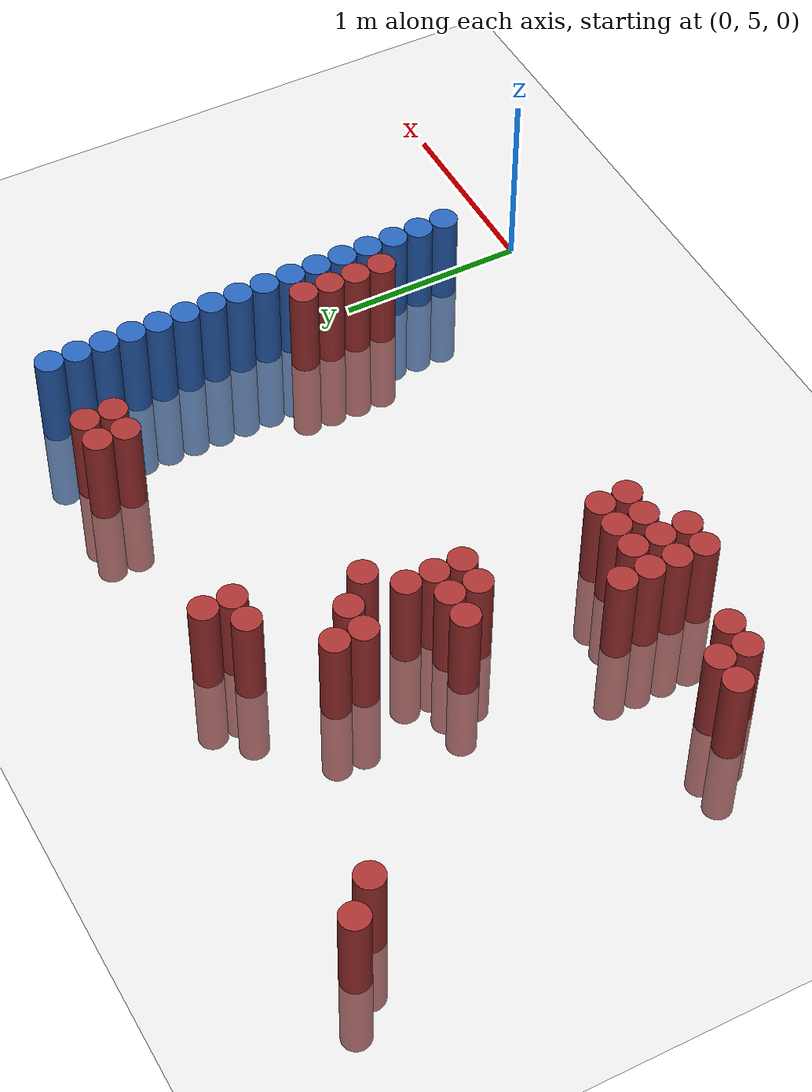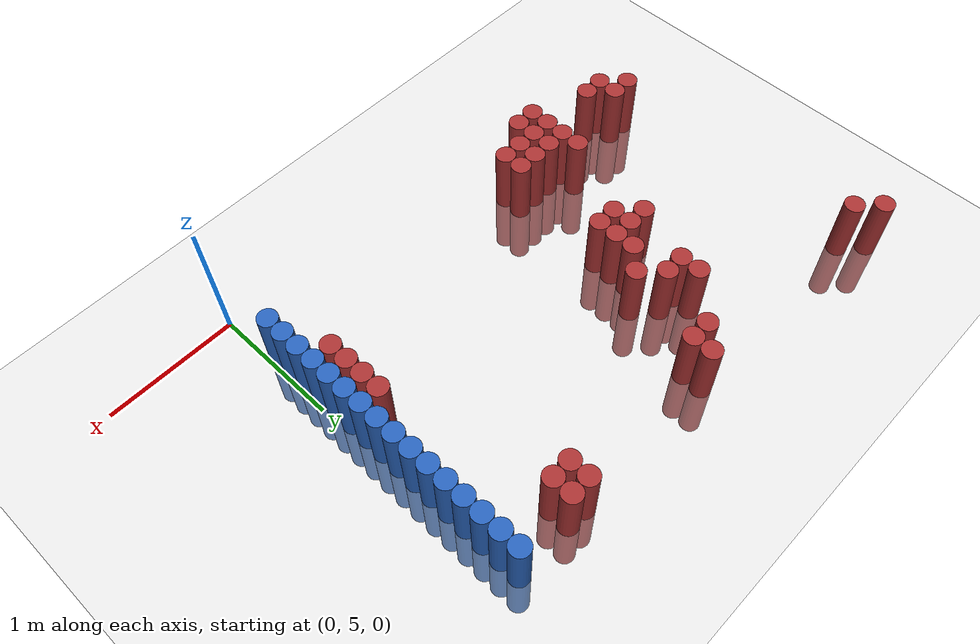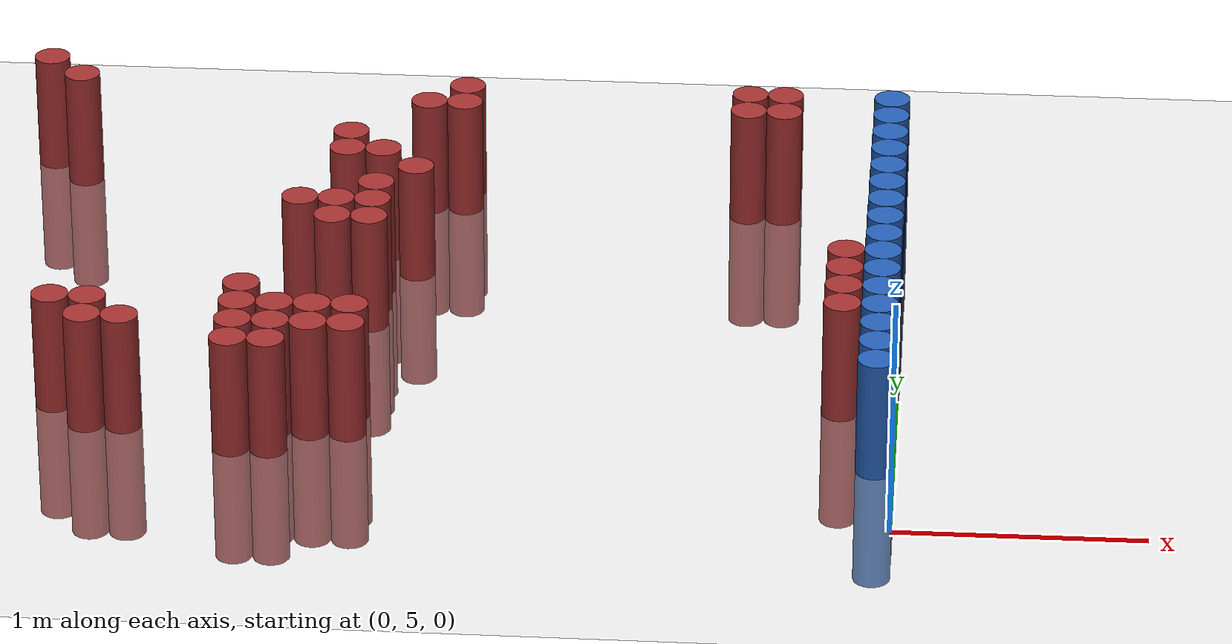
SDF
<sdf version="1.6">
 <world name="default">
  <model name="ground_plane">
   <static>1</static>
   <link name="link">
    <collision name="collision">
     <geometry><plane><normal>0 0 1</normal><size>100 100</size></plane></geometry>
     <surface><friction><ode><mu>100</mu><mu2>50</mu2></ode></friction></surface>
    </collision>
    <visual name="visual">
     <cast_shadows>0</cast_shadows>
     <geometry><plane><normal>0 0 1</normal><size>100 100</size></plane></geometry>
     <material>
      <script><uri>file://media/materials/scripts/gazebo.material</uri><name>Gazebo/Grey</name></script>
     </material>
    </visual>
   </link>
  </model>
  <model name="unit_cylinder_155">
   <static>1</static>
   <pose>-3.675000 7.875000 0.000000 0.000000 0.000000 0.000000</pose>
   <link name="link">
    <inertial>
     <mass>1</mass>
     <inertia><ixx>0.145833</ixx><ixy>0</ixy><ixz>0</ixz><iyy>0.145833</iyy><iyz>0</iyz><izz>0.125</izz></inertia>
    </inertial>
    <collision name="collision">
     <geometry><cylinder><radius>0.075000</radius><length>1</length></cylinder></geometry>
    </collision>
    <visual name="visual">
     <geometry><cylinder><radius>0.075000</radius><length>1</length></cylinder></geometry>
     <material>
      <ambient>0.648000 0.192000 0.192000 1</ambient>
      <diffuse>0.648000 0.192000 0.192000 1</diffuse>
     </material>
     <material>
      <script><name>Gazebo/Grey</name><uri>file://media/materials/scripts/gazebo.material</uri></script>
     </material>
    </visual>
   </link>
  </model>
  <model name="unit_cylinder_160">
   <static>1</static>
   <pose>-3.525000 7.725000 0.000000 0.000000 0.000000 0.000000</pose>
   <link name="link">
    <inertial>
     <mass>1</mass>
     <inertia><ixx>0.145833</ixx><ixy>0</ixy><ixz>0</ixz><iyy>0.145833</iyy><iyz>0</iyz><izz>0.125</izz></inertia>
    </inertial>
    <collision name="collision">
     <geometry><cylinder><radius>0.075000</radius><length>1</length></cylinder></geometry>
    </collision>
    <visual name="visual">
     <geometry><cylinder><radius>0.075000</radius><length>1</length></cylinder></geometry>
     <material>
      <ambient>0.648000 0.192000 0.192000 1</ambient>
      <diffuse>0.648000 0.192000 0.192000 1</diffuse>
     </material>
     <material>
      <script><name>Gazebo/Grey</name><uri>file://media/materials/scripts/gazebo.material</uri></script>
     </material>
    </visual>
   </link>
  </model>
  <model name="unit_cylinder_165">
   <static>1</static>
   <pose>-3.375000 5.775000 0.000000 0.000000 0.000000 0.000000</pose>
   <link name="link">
    <inertial>
     <mass>1</mass>
     <inertia><ixx>0.145833</ixx><ixy>0</ixy><ixz>0</ixz><iyy>0.145833</iyy><iyz>0</iyz><izz>0.125</izz></inertia>
    </inertial>
    <collision name="collision">
     <geometry><cylinder><radius>0.075000</radius><length>1</length></cylinder></geometry>
    </collision>
    <visual name="visual">
     <geometry><cylinder><radius>0.075000</radius><length>1</length></cylinder></geometry>
     <material>
      <ambient>0.648000 0.192000 0.192000 1</ambient>
      <diffuse>0.648000 0.192000 0.192000 1</diffuse>
     </material>
     <material>
      <script><name>Gazebo/Grey</name><uri>file://media/materials/scripts/gazebo.material</uri></script>
     </material>
    </visual>
   </link>
  </model>
  <model name="unit_cylinder_169">
   <static>1</static>
   <pose>-3.225000 5.625000 0.000000 0.000000 0.000000 0.000000</pose>
   <link name="link">
    <inertial>
     <mass>1</mass>
     <inertia><ixx>0.145833</ixx><ixy>0</ixy><ixz>0</ixz><iyy>0.145833</iyy><iyz>0</iyz><izz>0.125</izz></inertia>
    </inertial>
    <collision name="collision">
     <geometry><cylinder><radius>0.075000</radius><length>1</length></cylinder></geometry>
    </collision>
    <visual name="visual">
     <geometry><cylinder><radius>0.075000</radius><length>1</length></cylinder></geometry>
     <material>
      <ambient>0.648000 0.192000 0.192000 1</ambient>
      <diffuse>0.648000 0.192000 0.192000 1</diffuse>
     </material>
     <material>
      <script><name>Gazebo/Grey</name><uri>file://media/materials/scripts/gazebo.material</uri></script>
     </material>
    </visual>
   </link>
  </model>
  <model name="unit_cylinder_170">
   <static>1</static>
   <pose>-3.225000 5.775000 0.000000 0.000000 0.000000 0.000000</pose>
   <link name="link">
    <inertial>
     <mass>1</mass>
     <inertia><ixx>0.145833</ixx><ixy>0</ixy><ixz>0</ixz><iyy>0.145833</iyy><iyz>0</iyz><izz>0.125</izz></inertia>
    </inertial>
    <collision name="collision">
     <geometry><cylinder><radius>0.075000</radius><length>1</length></cylinder></geometry>
    </collision>
    <visual name="visual">
     <geometry><cylinder><radius>0.075000</radius><length>1</length></cylinder></geometry>
     <material>
      <ambient>0.648000 0.192000 0.192000 1</ambient>
      <diffuse>0.648000 0.192000 0.192000 1</diffuse>
     </material>
     <material>
      <script><name>Gazebo/Grey</name><uri>file://media/materials/scripts/gazebo.material</uri></script>
     </material>
    </visual>
   </link>
  </model>
  <model name="unit_cylinder_172">
   <static>1</static>
   <pose>-3.075000 5.625000 0.000000 0.000000 0.000000 0.000000</pose>
   <link name="link">
    <inertial>
     <mass>1</mass>
     <inertia><ixx>0.145833</ixx><ixy>0</ixy><ixz>0</ixz><iyy>0.145833</iyy><iyz>0</iyz><izz>0.125</izz></inertia>
    </inertial>
    <collision name="collision">
     <geometry><cylinder><radius>0.075000</radius><length>1</length></cylinder></geometry>
    </collision>
    <visual name="visual">
     <geometry><cylinder><radius>0.075000</radius><length>1</length></cylinder></geometry>
     <material>
      <ambient>0.648000 0.192000 0.192000 1</ambient>
      <diffuse>0.648000 0.192000 0.192000 1</diffuse>
     </material>
     <material>
      <script><name>Gazebo/Grey</name><uri>file://media/materials/scripts/gazebo.material</uri></script>
     </material>
    </visual>
   </link>
  </model>
  <model name="unit_cylinder_177">
   <static>1</static>
   <pose>-2.625000 5.475000 0.000000 0.000000 0.000000 0.000000</pose>
   <link name="link">
    <inertial>
     <mass>1</mass>
     <inertia><ixx>0.145833</ixx><ixy>0</ixy><ixz>0</ixz><iyy>0.145833</iyy><iyz>0</iyz><izz>0.125</izz></inertia>
    </inertial>
    <collision name="collision">
     <geometry><cylinder><radius>0.075000</radius><length>1</length></cylinder></geometry>
    </collision>
    <visual name="visual">
     <geometry><cylinder><radius>0.075000</radius><length>1</length></cylinder></geometry>
     <material>
      <ambient>0.648000 0.192000 0.192000 1</ambient>
      <diffuse>0.648000 0.192000 0.192000 1</diffuse>
     </material>
     <material>
      <script><name>Gazebo/Grey</name><uri>file://media/materials/scripts/gazebo.material</uri></script>
     </material>
    </visual>
   </link>
  </model>
  <model name="unit_cylinder_178">
   <static>1</static>
   <pose>-2.625000 5.625000 0.000000 0.000000 0.000000 0.000000</pose>
   <link name="link">
    <inertial>
     <mass>1</mass>
     <inertia><ixx>0.145833</ixx><ixy>0</ixy><ixz>0</ixz><iyy>0.145833</iyy><iyz>0</iyz><izz>0.125</izz></inertia>
    </inertial>
    <collision name="collision">
     <geometry><cylinder><radius>0.075000</radius><length>1</length></cylinder></geometry>
    </collision>
    <visual name="visual">
     <geometry><cylinder><radius>0.075000</radius><length>1</length></cylinder></geometry>
     <material>
      <ambient>0.648000 0.192000 0.192000 1</ambient>
      <diffuse>0.648000 0.192000 0.192000 1</diffuse>
     </material>
     <material>
      <script><name>Gazebo/Grey</name><uri>file://media/materials/scripts/gazebo.material</uri></script>
     </material>
    </visual>
   </link>
  </model>
  <model name="unit_cylinder_179">
   <static>1</static>
   <pose>-2.625000 5.775000 0.000000 0.000000 0.000000 0.000000</pose>
   <link name="link">
    <inertial>
     <mass>1</mass>
     <inertia><ixx>0.145833</ixx><ixy>0</ixy><ixz>0</ixz><iyy>0.145833</iyy><iyz>0</iyz><izz>0.125</izz></inertia>
    </inertial>
    <collision name="collision">
     <geometry><cylinder><radius>0.075000</radius><length>1</length></cylinder></geometry>
    </collision>
    <visual name="visual">
     <geometry><cylinder><radius>0.075000</radius><length>1</length></cylinder></geometry>
     <material>
      <ambient>0.648000 0.192000 0.192000 1</ambient>
      <diffuse>0.648000 0.192000 0.192000 1</diffuse>
     </material>
     <material>
      <script><name>Gazebo/Grey</name><uri>file://media/materials/scripts/gazebo.material</uri></script>
     </material>
    </visual>
   </link>
  </model>
  <model name="unit_cylinder_180">
   <static>1</static>
   <pose>-2.625000 5.925000 0.000000 0.000000 0.000000 0.000000</pose>
   <link name="link">
    <inertial>
     <mass>1</mass>
     <inertia><ixx>0.145833</ixx><ixy>0</ixy><ixz>0</ixz><iyy>0.145833</iyy><iyz>0</iyz><izz>0.125</izz></inertia>
    </inertial>
    <collision name="collision">
     <geometry><cylinder><radius>0.075000</radius><length>1</length></cylinder></geometry>
    </collision>
    <visual name="visual">
     <geometry><cylinder><radius>0.075000</radius><length>1</length></cylinder></geometry>
     <material>
      <ambient>0.648000 0.192000 0.192000 1</ambient>
      <diffuse>0.648000 0.192000 0.192000 1</diffuse>
     </material>
     <material>
      <script><name>Gazebo/Grey</name><uri>file://media/materials/scripts/gazebo.material</uri></script>
     </material>
    </visual>
   </link>
  </model>
  <model name="unit_cylinder_184">
   <static>1</static>
   <pose>-2.475000 5.475000 0.000000 0.000000 0.000000 0.000000</pose>
   <link name="link">
    <inertial>
     <mass>1</mass>
     <inertia><ixx>0.145833</ixx><ixy>0</ixy><ixz>0</ixz><iyy>0.145833</iyy><iyz>0</iyz><izz>0.125</izz></inertia>
    </inertial>
    <collision name="collision">
     <geometry><cylinder><radius>0.075000</radius><length>1</length></cylinder></geometry>
    </collision>
    <visual name="visual">
     <geometry><cylinder><radius>0.075000</radius><length>1</length></cylinder></geometry>
     <material>
      <ambient>0.648000 0.192000 0.192000 1</ambient>
      <diffuse>0.648000 0.192000 0.192000 1</diffuse>
     </material>
     <material>
      <script><name>Gazebo/Grey</name><uri>file://media/materials/scripts/gazebo.material</uri></script>
     </material>
    </visual>
   </link>
  </model>
  <model name="unit_cylinder_185">
   <static>1</static>
   <pose>-2.475000 5.625000 0.000000 0.000000 0.000000 0.000000</pose>
   <link name="link">
    <inertial>
     <mass>1</mass>
     <inertia><ixx>0.145833</ixx><ixy>0</ixy><ixz>0</ixz><iyy>0.145833</iyy><iyz>0</iyz><izz>0.125</izz></inertia>
    </inertial>
    <collision name="collision">
     <geometry><cylinder><radius>0.075000</radius><length>1</length></cylinder></geometry>
    </collision>
    <visual name="visual">
     <geometry><cylinder><radius>0.075000</radius><length>1</length></cylinder></geometry>
     <material>
      <ambient>0.648000 0.192000 0.192000 1</ambient>
      <diffuse>0.648000 0.192000 0.192000 1</diffuse>
     </material>
     <material>
      <script><name>Gazebo/Grey</name><uri>file://media/materials/scripts/gazebo.material</uri></script>
     </material>
    </visual>
   </link>
  </model>
  <model name="unit_cylinder_186">
   <static>1</static>
   <pose>-2.475000 5.775000 0.000000 0.000000 0.000000 0.000000</pose>
   <link name="link">
    <inertial>
     <mass>1</mass>
     <inertia><ixx>0.145833</ixx><ixy>0</ixy><ixz>0</ixz><iyy>0.145833</iyy><iyz>0</iyz><izz>0.125</izz></inertia>
    </inertial>
    <collision name="collision">
     <geometry><cylinder><radius>0.075000</radius><length>1</length></cylinder></geometry>
    </collision>
    <visual name="visual">
     <geometry><cylinder><radius>0.075000</radius><length>1</length></cylinder></geometry>
     <material>
      <ambient>0.648000 0.192000 0.192000 1</ambient>
      <diffuse>0.648000 0.192000 0.192000 1</diffuse>
     </material>
     <material>
      <script><name>Gazebo/Grey</name><uri>file://media/materials/scripts/gazebo.material</uri></script>
     </material>
    </visual>
   </link>
  </model>
  <model name="unit_cylinder_187">
   <static>1</static>
   <pose>-2.475000 6.675000 0.000000 0.000000 0.000000 0.000000</pose>
   <link name="link">
    <inertial>
     <mass>1</mass>
     <inertia><ixx>0.145833</ixx><ixy>0</ixy><ixz>0</ixz><iyy>0.145833</iyy><iyz>0</iyz><izz>0.125</izz></inertia>
    </inertial>
    <collision name="collision">
     <geometry><cylinder><radius>0.075000</radius><length>1</length></cylinder></geometry>
    </collision>
    <visual name="visual">
     <geometry><cylinder><radius>0.075000</radius><length>1</length></cylinder></geometry>
     <material>
      <ambient>0.648000 0.192000 0.192000 1</ambient>
      <diffuse>0.648000 0.192000 0.192000 1</diffuse>
     </material>
     <material>
      <script><name>Gazebo/Grey</name><uri>file://media/materials/scripts/gazebo.material</uri></script>
     </material>
    </visual>
   </link>
  </model>
  <model name="unit_cylinder_191">
   <static>1</static>
   <pose>-2.325000 5.625000 0.000000 0.000000 0.000000 0.000000</pose>
   <link name="link">
    <inertial>
     <mass>1</mass>
     <inertia><ixx>0.145833</ixx><ixy>0</ixy><ixz>0</ixz><iyy>0.145833</iyy><iyz>0</iyz><izz>0.125</izz></inertia>
    </inertial>
    <collision name="collision">
     <geometry><cylinder><radius>0.075000</radius><length>1</length></cylinder></geometry>
    </collision>
    <visual name="visual">
     <geometry><cylinder><radius>0.075000</radius><length>1</length></cylinder></geometry>
     <material>
      <ambient>0.648000 0.192000 0.192000 1</ambient>
      <diffuse>0.648000 0.192000 0.192000 1</diffuse>
     </material>
     <material>
      <script><name>Gazebo/Grey</name><uri>file://media/materials/scripts/gazebo.material</uri></script>
     </material>
    </visual>
   </link>
  </model>
  <model name="unit_cylinder_192">
   <static>1</static>
   <pose>-2.325000 5.775000 0.000000 0.000000 0.000000 0.000000</pose>
   <link name="link">
    <inertial>
     <mass>1</mass>
     <inertia><ixx>0.145833</ixx><ixy>0</ixy><ixz>0</ixz><iyy>0.145833</iyy><iyz>0</iyz><izz>0.125</izz></inertia>
    </inertial>
    <collision name="collision">
     <geometry><cylinder><radius>0.075000</radius><length>1</length></cylinder></geometry>
    </collision>
    <visual name="visual">
     <geometry><cylinder><radius>0.075000</radius><length>1</length></cylinder></geometry>
     <material>
      <ambient>0.648000 0.192000 0.192000 1</ambient>
      <diffuse>0.648000 0.192000 0.192000 1</diffuse>
     </material>
     <material>
      <script><name>Gazebo/Grey</name><uri>file://media/materials/scripts/gazebo.material</uri></script>
     </material>
    </visual>
   </link>
  </model>
  <model name="unit_cylinder_193">
   <static>1</static>
   <pose>-2.325000 6.525000 0.000000 0.000000 0.000000 0.000000</pose>
   <link name="link">
    <inertial>
     <mass>1</mass>
     <inertia><ixx>0.145833</ixx><ixy>0</ixy><ixz>0</ixz><iyy>0.145833</iyy><iyz>0</iyz><izz>0.125</izz></inertia>
    </inertial>
    <collision name="collision">
     <geometry><cylinder><radius>0.075000</radius><length>1</length></cylinder></geometry>
    </collision>
    <visual name="visual">
     <geometry><cylinder><radius>0.075000</radius><length>1</length></cylinder></geometry>
     <material>
      <ambient>0.648000 0.192000 0.192000 1</ambient>
      <diffuse>0.648000 0.192000 0.192000 1</diffuse>
     </material>
     <material>
      <script><name>Gazebo/Grey</name><uri>file://media/materials/scripts/gazebo.material</uri></script>
     </material>
    </visual>
   </link>
  </model>
  <model name="unit_cylinder_194">
   <static>1</static>
   <pose>-2.325000 6.675000 0.000000 0.000000 0.000000 0.000000</pose>
   <link name="link">
    <inertial>
     <mass>1</mass>
     <inertia><ixx>0.145833</ixx><ixy>0</ixy><ixz>0</ixz><iyy>0.145833</iyy><iyz>0</iyz><izz>0.125</izz></inertia>
    </inertial>
    <collision name="collision">
     <geometry><cylinder><radius>0.075000</radius><length>1</length></cylinder></geometry>
    </collision>
    <visual name="visual">
     <geometry><cylinder><radius>0.075000</radius><length>1</length></cylinder></geometry>
     <material>
      <ambient>0.648000 0.192000 0.192000 1</ambient>
      <diffuse>0.648000 0.192000 0.192000 1</diffuse>
     </material>
     <material>
      <script><name>Gazebo/Grey</name><uri>file://media/materials/scripts/gazebo.material</uri></script>
     </material>
    </visual>
   </link>
  </model>
  <model name="unit_cylinder_195">
   <static>1</static>
   <pose>-2.325000 7.125000 0.000000 0.000000 0.000000 0.000000</pose>
   <link name="link">
    <inertial>
     <mass>1</mass>
     <inertia><ixx>0.145833</ixx><ixy>0</ixy><ixz>0</ixz><iyy>0.145833</iyy><iyz>0</iyz><izz>0.125</izz></inertia>
    </inertial>
    <collision name="collision">
     <geometry><cylinder><radius>0.075000</radius><length>1</length></cylinder></geometry>
    </collision>
    <visual name="visual">
     <geometry><cylinder><radius>0.075000</radius><length>1</length></cylinder></geometry>
     <material>
      <ambient>0.648000 0.192000 0.192000 1</ambient>
      <diffuse>0.648000 0.192000 0.192000 1</diffuse>
     </material>
     <material>
      <script><name>Gazebo/Grey</name><uri>file://media/materials/scripts/gazebo.material</uri></script>
     </material>
    </visual>
   </link>
  </model>
  <model name="unit_cylinder_196">
   <static>1</static>
   <pose>-2.325000 7.275000 0.000000 0.000000 0.000000 0.000000</pose>
   <link name="link">
    <inertial>
     <mass>1</mass>
     <inertia><ixx>0.145833</ixx><ixy>0</ixy><ixz>0</ixz><iyy>0.145833</iyy><iyz>0</iyz><izz>0.125</izz></inertia>
    </inertial>
    <collision name="collision">
     <geometry><cylinder><radius>0.075000</radius><length>1</length></cylinder></geometry>
    </collision>
    <visual name="visual">
     <geometry><cylinder><radius>0.075000</radius><length>1</length></cylinder></geometry>
     <material>
      <ambient>0.648000 0.192000 0.192000 1</ambient>
      <diffuse>0.648000 0.192000 0.192000 1</diffuse>
     </material>
     <material>
      <script><name>Gazebo/Grey</name><uri>file://media/materials/scripts/gazebo.material</uri></script>
     </material>
    </visual>
   </link>
  </model>
  <model name="unit_cylinder_198">
   <static>1</static>
   <pose>-2.175000 5.625000 0.000000 0.000000 0.000000 0.000000</pose>
   <link name="link">
    <inertial>
     <mass>1</mass>
     <inertia><ixx>0.145833</ixx><ixy>0</ixy><ixz>0</ixz><iyy>0.145833</iyy><iyz>0</iyz><izz>0.125</izz></inertia>
    </inertial>
    <collision name="collision">
     <geometry><cylinder><radius>0.075000</radius><length>1</length></cylinder></geometry>
    </collision>
    <visual name="visual">
     <geometry><cylinder><radius>0.075000</radius><length>1</length></cylinder></geometry>
     <material>
      <ambient>0.648000 0.192000 0.192000 1</ambient>
      <diffuse>0.648000 0.192000 0.192000 1</diffuse>
     </material>
     <material>
      <script><name>Gazebo/Grey</name><uri>file://media/materials/scripts/gazebo.material</uri></script>
     </material>
    </visual>
   </link>
  </model>
  <model name="unit_cylinder_199">
   <static>1</static>
   <pose>-2.175000 5.775000 0.000000 0.000000 0.000000 0.000000</pose>
   <link name="link">
    <inertial>
     <mass>1</mass>
     <inertia><ixx>0.145833</ixx><ixy>0</ixy><ixz>0</ixz><iyy>0.145833</iyy><iyz>0</iyz><izz>0.125</izz></inertia>
    </inertial>
    <collision name="collision">
     <geometry><cylinder><radius>0.075000</radius><length>1</length></cylinder></geometry>
    </collision>
    <visual name="visual">
     <geometry><cylinder><radius>0.075000</radius><length>1</length></cylinder></geometry>
     <material>
      <ambient>0.648000 0.192000 0.192000 1</ambient>
      <diffuse>0.648000 0.192000 0.192000 1</diffuse>
     </material>
     <material>
      <script><name>Gazebo/Grey</name><uri>file://media/materials/scripts/gazebo.material</uri></script>
     </material>
    </visual>
   </link>
  </model>
  <model name="unit_cylinder_200">
   <static>1</static>
   <pose>-2.175000 6.525000 0.000000 0.000000 0.000000 0.000000</pose>
   <link name="link">
    <inertial>
     <mass>1</mass>
     <inertia><ixx>0.145833</ixx><ixy>0</ixy><ixz>0</ixz><iyy>0.145833</iyy><iyz>0</iyz><izz>0.125</izz></inertia>
    </inertial>
    <collision name="collision">
     <geometry><cylinder><radius>0.075000</radius><length>1</length></cylinder></geometry>
    </collision>
    <visual name="visual">
     <geometry><cylinder><radius>0.075000</radius><length>1</length></cylinder></geometry>
     <material>
      <ambient>0.648000 0.192000 0.192000 1</ambient>
      <diffuse>0.648000 0.192000 0.192000 1</diffuse>
     </material>
     <material>
      <script><name>Gazebo/Grey</name><uri>file://media/materials/scripts/gazebo.material</uri></script>
     </material>
    </visual>
   </link>
  </model>
  <model name="unit_cylinder_201">
   <static>1</static>
   <pose>-2.175000 6.675000 0.000000 0.000000 0.000000 0.000000</pose>
   <link name="link">
    <inertial>
     <mass>1</mass>
     <inertia><ixx>0.145833</ixx><ixy>0</ixy><ixz>0</ixz><iyy>0.145833</iyy><iyz>0</iyz><izz>0.125</izz></inertia>
    </inertial>
    <collision name="collision">
     <geometry><cylinder><radius>0.075000</radius><length>1</length></cylinder></geometry>
    </collision>
    <visual name="visual">
     <geometry><cylinder><radius>0.075000</radius><length>1</length></cylinder></geometry>
     <material>
      <ambient>0.648000 0.192000 0.192000 1</ambient>
      <diffuse>0.648000 0.192000 0.192000 1</diffuse>
     </material>
     <material>
      <script><name>Gazebo/Grey</name><uri>file://media/materials/scripts/gazebo.material</uri></script>
     </material>
    </visual>
   </link>
  </model>
  <model name="unit_cylinder_202">
   <static>1</static>
   <pose>-2.175000 6.825000 0.000000 0.000000 0.000000 0.000000</pose>
   <link name="link">
    <inertial>
     <mass>1</mass>
     <inertia><ixx>0.145833</ixx><ixy>0</ixy><ixz>0</ixz><iyy>0.145833</iyy><iyz>0</iyz><izz>0.125</izz></inertia>
    </inertial>
    <collision name="collision">
     <geometry><cylinder><radius>0.075000</radius><length>1</length></cylinder></geometry>
    </collision>
    <visual name="visual">
     <geometry><cylinder><radius>0.075000</radius><length>1</length></cylinder></geometry>
     <material>
      <ambient>0.648000 0.192000 0.192000 1</ambient>
      <diffuse>0.648000 0.192000 0.192000 1</diffuse>
     </material>
     <material>
      <script><name>Gazebo/Grey</name><uri>file://media/materials/scripts/gazebo.material</uri></script>
     </material>
    </visual>
   </link>
  </model>
  <model name="unit_cylinder_203">
   <static>1</static>
   <pose>-2.175000 7.125000 0.000000 0.000000 0.000000 0.000000</pose>
   <link name="link">
    <inertial>
     <mass>1</mass>
     <inertia><ixx>0.145833</ixx><ixy>0</ixy><ixz>0</ixz><iyy>0.145833</iyy><iyz>0</iyz><izz>0.125</izz></inertia>
    </inertial>
    <collision name="collision">
     <geometry><cylinder><radius>0.075000</radius><length>1</length></cylinder></geometry>
    </collision>
    <visual name="visual">
     <geometry><cylinder><radius>0.075000</radius><length>1</length></cylinder></geometry>
     <material>
      <ambient>0.648000 0.192000 0.192000 1</ambient>
      <diffuse>0.648000 0.192000 0.192000 1</diffuse>
     </material>
     <material>
      <script><name>Gazebo/Grey</name><uri>file://media/materials/scripts/gazebo.material</uri></script>
     </material>
    </visual>
   </link>
  </model>
  <model name="unit_cylinder_204">
   <static>1</static>
   <pose>-2.025000 6.975000 0.000000 0.000000 0.000000 0.000000</pose>
   <link name="link">
    <inertial>
     <mass>1</mass>
     <inertia><ixx>0.145833</ixx><ixy>0</ixy><ixz>0</ixz><iyy>0.145833</iyy><iyz>0</iyz><izz>0.125</izz></inertia>
    </inertial>
    <collision name="collision">
     <geometry><cylinder><radius>0.075000</radius><length>1</length></cylinder></geometry>
    </collision>
    <visual name="visual">
     <geometry><cylinder><radius>0.075000</radius><length>1</length></cylinder></geometry>
     <material>
      <ambient>0.648000 0.192000 0.192000 1</ambient>
      <diffuse>0.648000 0.192000 0.192000 1</diffuse>
     </material>
     <material>
      <script><name>Gazebo/Grey</name><uri>file://media/materials/scripts/gazebo.material</uri></script>
     </material>
    </visual>
   </link>
  </model>
  <model name="unit_cylinder_205">
   <static>1</static>
   <pose>-2.025000 7.575000 0.000000 0.000000 0.000000 0.000000</pose>
   <link name="link">
    <inertial>
     <mass>1</mass>
     <inertia><ixx>0.145833</ixx><ixy>0</ixy><ixz>0</ixz><iyy>0.145833</iyy><iyz>0</iyz><izz>0.125</izz></inertia>
    </inertial>
    <collision name="collision">
     <geometry><cylinder><radius>0.075000</radius><length>1</length></cylinder></geometry>
    </collision>
    <visual name="visual">
     <geometry><cylinder><radius>0.075000</radius><length>1</length></cylinder></geometry>
     <material>
      <ambient>0.648000 0.192000 0.192000 1</ambient>
      <diffuse>0.648000 0.192000 0.192000 1</diffuse>
     </material>
     <material>
      <script><name>Gazebo/Grey</name><uri>file://media/materials/scripts/gazebo.material</uri></script>
     </material>
    </visual>
   </link>
  </model>
  <model name="unit_cylinder_206">
   <static>1</static>
   <pose>-1.875000 7.575000 0.000000 0.000000 0.000000 0.000000</pose>
   <link name="link">
    <inertial>
     <mass>1</mass>
     <inertia><ixx>0.145833</ixx><ixy>0</ixy><ixz>0</ixz><iyy>0.145833</iyy><iyz>0</iyz><izz>0.125</izz></inertia>
    </inertial>
    <collision name="collision">
     <geometry><cylinder><radius>0.075000</radius><length>1</length></cylinder></geometry>
    </collision>
    <visual name="visual">
     <geometry><cylinder><radius>0.075000</radius><length>1</length></cylinder></geometry>
     <material>
      <ambient>0.648000 0.192000 0.192000 1</ambient>
      <diffuse>0.648000 0.192000 0.192000 1</diffuse>
     </material>
     <material>
      <script><name>Gazebo/Grey</name><uri>file://media/materials/scripts/gazebo.material</uri></script>
     </material>
    </visual>
   </link>
  </model>
  <model name="unit_cylinder_207">
   <static>1</static>
   <pose>-1.875000 7.725000 0.000000 0.000000 0.000000 0.000000</pose>
   <link name="link">
    <inertial>
     <mass>1</mass>
     <inertia><ixx>0.145833</ixx><ixy>0</ixy><ixz>0</ixz><iyy>0.145833</iyy><iyz>0</iyz><izz>0.125</izz></inertia>
    </inertial>
    <collision name="collision">
     <geometry><cylinder><radius>0.075000</radius><length>1</length></cylinder></geometry>
    </collision>
    <visual name="visual">
     <geometry><cylinder><radius>0.075000</radius><length>1</length></cylinder></geometry>
     <material>
      <ambient>0.648000 0.192000 0.192000 1</ambient>
      <diffuse>0.648000 0.192000 0.192000 1</diffuse>
     </material>
     <material>
      <script><name>Gazebo/Grey</name><uri>file://media/materials/scripts/gazebo.material</uri></script>
     </material>
    </visual>
   </link>
  </model>
  <model name="unit_cylinder_211">
   <static>1</static>
   <pose>-0.675000 7.575000 0.000000 0.000000 0.000000 0.000000</pose>
   <link name="link">
    <inertial>
     <mass>1</mass>
     <inertia><ixx>0.145833</ixx><ixy>0</ixy><ixz>0</ixz><iyy>0.145833</iyy><iyz>0</iyz><izz>0.125</izz></inertia>
    </inertial>
    <collision name="collision">
     <geometry><cylinder><radius>0.075000</radius><length>1</length></cylinder></geometry>
    </collision>
    <visual name="visual">
     <geometry><cylinder><radius>0.075000</radius><length>1</length></cylinder></geometry>
     <material>
      <ambient>0.648000 0.192000 0.192000 1</ambient>
      <diffuse>0.648000 0.192000 0.192000 1</diffuse>
     </material>
     <material>
      <script><name>Gazebo/Grey</name><uri>file://media/materials/scripts/gazebo.material</uri></script>
     </material>
    </visual>
   </link>
  </model>
  <model name="unit_cylinder_212">
   <static>1</static>
   <pose>-0.675000 7.725000 0.000000 0.000000 0.000000 0.000000</pose>
   <link name="link">
    <inertial>
     <mass>1</mass>
     <inertia><ixx>0.145833</ixx><ixy>0</ixy><ixz>0</ixz><iyy>0.145833</iyy><iyz>0</iyz><izz>0.125</izz></inertia>
    </inertial>
    <collision name="collision">
     <geometry><cylinder><radius>0.075000</radius><length>1</length></cylinder></geometry>
    </collision>
    <visual name="visual">
     <geometry><cylinder><radius>0.075000</radius><length>1</length></cylinder></geometry>
     <material>
      <ambient>0.648000 0.192000 0.192000 1</ambient>
      <diffuse>0.648000 0.192000 0.192000 1</diffuse>
     </material>
     <material>
      <script><name>Gazebo/Grey</name><uri>file://media/materials/scripts/gazebo.material</uri></script>
     </material>
    </visual>
   </link>
  </model>
  <model name="unit_cylinder_215">
   <static>1</static>
   <pose>-0.525000 7.575000 0.000000 0.000000 0.000000 0.000000</pose>
   <link name="link">
    <inertial>
     <mass>1</mass>
     <inertia><ixx>0.145833</ixx><ixy>0</ixy><ixz>0</ixz><iyy>0.145833</iyy><iyz>0</iyz><izz>0.125</izz></inertia>
    </inertial>
    <collision name="collision">
     <geometry><cylinder><radius>0.075000</radius><length>1</length></cylinder></geometry>
    </collision>
    <visual name="visual">
     <geometry><cylinder><radius>0.075000</radius><length>1</length></cylinder></geometry>
     <material>
      <ambient>0.648000 0.192000 0.192000 1</ambient>
      <diffuse>0.648000 0.192000 0.192000 1</diffuse>
     </material>
     <material>
      <script><name>Gazebo/Grey</name><uri>file://media/materials/scripts/gazebo.material</uri></script>
     </material>
    </visual>
   </link>
  </model>
  <model name="unit_cylinder_216">
   <static>1</static>
   <pose>-0.525000 7.725000 0.000000 0.000000 0.000000 0.000000</pose>
   <link name="link">
    <inertial>
     <mass>1</mass>
     <inertia><ixx>0.145833</ixx><ixy>0</ixy><ixz>0</ixz><iyy>0.145833</iyy><iyz>0</iyz><izz>0.125</izz></inertia>
    </inertial>
    <collision name="collision">
     <geometry><cylinder><radius>0.075000</radius><length>1</length></cylinder></geometry>
    </collision>
    <visual name="visual">
     <geometry><cylinder><radius>0.075000</radius><length>1</length></cylinder></geometry>
     <material>
      <ambient>0.648000 0.192000 0.192000 1</ambient>
      <diffuse>0.648000 0.192000 0.192000 1</diffuse>
     </material>
     <material>
      <script><name>Gazebo/Grey</name><uri>file://media/materials/scripts/gazebo.material</uri></script>
     </material>
    </visual>
   </link>
  </model>
  <model name="unit_cylinder_225">
   <static>1</static>
   <pose>-0.225000 5.925000 0.000000 0.000000 0.000000 0.000000</pose>
   <link name="link">
    <inertial>
     <mass>1</mass>
     <inertia><ixx>0.145833</ixx><ixy>0</ixy><ixz>0</ixz><iyy>0.145833</iyy><iyz>0</iyz><izz>0.125</izz></inertia>
    </inertial>
    <collision name="collision">
     <geometry><cylinder><radius>0.075000</radius><length>1</length></cylinder></geometry>
    </collision>
    <visual name="visual">
     <geometry><cylinder><radius>0.075000</radius><length>1</length></cylinder></geometry>
     <material>
      <ambient>0.648000 0.192000 0.192000 1</ambient>
      <diffuse>0.648000 0.192000 0.192000 1</diffuse>
     </material>
     <material>
      <script><name>Gazebo/Grey</name><uri>file://media/materials/scripts/gazebo.material</uri></script>
     </material>
    </visual>
   </link>
  </model>
  <model name="unit_cylinder_226">
   <static>1</static>
   <pose>-0.225000 6.075000 0.000000 0.000000 0.000000 0.000000</pose>
   <link name="link">
    <inertial>
     <mass>1</mass>
     <inertia><ixx>0.145833</ixx><ixy>0</ixy><ixz>0</ixz><iyy>0.145833</iyy><iyz>0</iyz><izz>0.125</izz></inertia>
    </inertial>
    <collision name="collision">
     <geometry><cylinder><radius>0.075000</radius><length>1</length></cylinder></geometry>
    </collision>
    <visual name="visual">
     <geometry><cylinder><radius>0.075000</radius><length>1</length></cylinder></geometry>
     <material>
      <ambient>0.648000 0.192000 0.192000 1</ambient>
      <diffuse>0.648000 0.192000 0.192000 1</diffuse>
     </material>
     <material>
      <script><name>Gazebo/Grey</name><uri>file://media/materials/scripts/gazebo.material</uri></script>
     </material>
    </visual>
   </link>
  </model>
  <model name="unit_cylinder_227">
   <static>1</static>
   <pose>-0.225000 6.225000 0.000000 0.000000 0.000000 0.000000</pose>
   <link name="link">
    <inertial>
     <mass>1</mass>
     <inertia><ixx>0.145833</ixx><ixy>0</ixy><ixz>0</ixz><iyy>0.145833</iyy><iyz>0</iyz><izz>0.125</izz></inertia>
    </inertial>
    <collision name="collision">
     <geometry><cylinder><radius>0.075000</radius><length>1</length></cylinder></geometry>
    </collision>
    <visual name="visual">
     <geometry><cylinder><radius>0.075000</radius><length>1</length></cylinder></geometry>
     <material>
      <ambient>0.648000 0.192000 0.192000 1</ambient>
      <diffuse>0.648000 0.192000 0.192000 1</diffuse>
     </material>
     <material>
      <script><name>Gazebo/Grey</name><uri>file://media/materials/scripts/gazebo.material</uri></script>
     </material>
    </visual>
   </link>
  </model>
  <model name="unit_cylinder_228">
   <static>1</static>
   <pose>-0.225000 6.375000 0.000000 0.000000 0.000000 0.000000</pose>
   <link name="link">
    <inertial>
     <mass>1</mass>
     <inertia><ixx>0.145833</ixx><ixy>0</ixy><ixz>0</ixz><iyy>0.145833</iyy><iyz>0</iyz><izz>0.125</izz></inertia>
    </inertial>
    <collision name="collision">
     <geometry><cylinder><radius>0.075000</radius><length>1</length></cylinder></geometry>
    </collision>
    <visual name="visual">
     <geometry><cylinder><radius>0.075000</radius><length>1</length></cylinder></geometry>
     <material>
      <ambient>0.648000 0.192000 0.192000 1</ambient>
      <diffuse>0.648000 0.192000 0.192000 1</diffuse>
     </material>
     <material>
      <script><name>Gazebo/Grey</name><uri>file://media/materials/scripts/gazebo.material</uri></script>
     </material>
    </visual>
   </link>
  </model>
  <model name="unit_cylinder_242">
   <static>1</static>
   <pose>-0.075000 5.475000 0.000000 0.000000 0.000000 0.000000</pose>
   <link name="link">
    <inertial>
     <mass>1</mass>
     <inertia><ixx>0.145833</ixx><ixy>0</ixy><ixz>0</ixz><iyy>0.145833</iyy><iyz>0</iyz><izz>0.125</izz></inertia>
    </inertial>
    <collision name="collision">
     <geometry><cylinder><radius>0.075000</radius><length>1</length></cylinder></geometry>
    </collision>
    <visual name="visual">
     <geometry><cylinder><radius>0.075000</radius><length>1</length></cylinder></geometry>
     <material>
      <ambient>0.152000 0.379000 0.720000 1</ambient>
      <diffuse>0.152000 0.379000 0.720000 1</diffuse>
     </material>
     <material>
      <script><name>Gazebo/Grey</name><uri>file://media/materials/scripts/gazebo.material</uri></script>
     </material>
    </visual>
   </link>
  </model>
  <model name="unit_cylinder_243">
   <static>1</static>
   <pose>-0.075000 5.625000 0.000000 0.000000 0.000000 0.000000</pose>
   <link name="link">
    <inertial>
     <mass>1</mass>
     <inertia><ixx>0.145833</ixx><ixy>0</ixy><ixz>0</ixz><iyy>0.145833</iyy><iyz>0</iyz><izz>0.125</izz></inertia>
    </inertial>
    <collision name="collision">
     <geometry><cylinder><radius>0.075000</radius><length>1</length></cylinder></geometry>
    </collision>
    <visual name="visual">
     <geometry><cylinder><radius>0.075000</radius><length>1</length></cylinder></geometry>
     <material>
      <ambient>0.152000 0.379000 0.720000 1</ambient>
      <diffuse>0.152000 0.379000 0.720000 1</diffuse>
     </material>
     <material>
      <script><name>Gazebo/Grey</name><uri>file://media/materials/scripts/gazebo.material</uri></script>
     </material>
    </visual>
   </link>
  </model>
  <model name="unit_cylinder_244">
   <static>1</static>
   <pose>-0.075000 5.775000 0.000000 0.000000 0.000000 0.000000</pose>
   <link name="link">
    <inertial>
     <mass>1</mass>
     <inertia><ixx>0.145833</ixx><ixy>0</ixy><ixz>0</ixz><iyy>0.145833</iyy><iyz>0</iyz><izz>0.125</izz></inertia>
    </inertial>
    <collision name="collision">
     <geometry><cylinder><radius>0.075000</radius><length>1</length></cylinder></geometry>
    </collision>
    <visual name="visual">
     <geometry><cylinder><radius>0.075000</radius><length>1</length></cylinder></geometry>
     <material>
      <ambient>0.152000 0.379000 0.720000 1</ambient>
      <diffuse>0.152000 0.379000 0.720000 1</diffuse>
     </material>
     <material>
      <script><name>Gazebo/Grey</name><uri>file://media/materials/scripts/gazebo.material</uri></script>
     </material>
    </visual>
   </link>
  </model>
  <model name="unit_cylinder_245">
   <static>1</static>
   <pose>-0.075000 5.925000 0.000000 0.000000 0.000000 0.000000</pose>
   <link name="link">
    <inertial>
     <mass>1</mass>
     <inertia><ixx>0.145833</ixx><ixy>0</ixy><ixz>0</ixz><iyy>0.145833</iyy><iyz>0</iyz><izz>0.125</izz></inertia>
    </inertial>
    <collision name="collision">
     <geometry><cylinder><radius>0.075000</radius><length>1</length></cylinder></geometry>
    </collision>
    <visual name="visual">
     <geometry><cylinder><radius>0.075000</radius><length>1</length></cylinder></geometry>
     <material>
      <ambient>0.152000 0.379000 0.720000 1</ambient>
      <diffuse>0.152000 0.379000 0.720000 1</diffuse>
     </material>
     <material>
      <script><name>Gazebo/Grey</name><uri>file://media/materials/scripts/gazebo.material</uri></script>
     </material>
    </visual>
   </link>
  </model>
  <model name="unit_cylinder_246">
   <static>1</static>
   <pose>-0.075000 6.075000 0.000000 0.000000 0.000000 0.000000</pose>
   <link name="link">
    <inertial>
     <mass>1</mass>
     <inertia><ixx>0.145833</ixx><ixy>0</ixy><ixz>0</ixz><iyy>0.145833</iyy><iyz>0</iyz><izz>0.125</izz></inertia>
    </inertial>
    <collision name="collision">
     <geometry><cylinder><radius>0.075000</radius><length>1</length></cylinder></geometry>
    </collision>
    <visual name="visual">
     <geometry><cylinder><radius>0.075000</radius><length>1</length></cylinder></geometry>
     <material>
      <ambient>0.152000 0.379000 0.720000 1</ambient>
      <diffuse>0.152000 0.379000 0.720000 1</diffuse>
     </material>
     <material>
      <script><name>Gazebo/Grey</name><uri>file://media/materials/scripts/gazebo.material</uri></script>
     </material>
    </visual>
   </link>
  </model>
  <model name="unit_cylinder_247">
   <static>1</static>
   <pose>-0.075000 6.225000 0.000000 0.000000 0.000000 0.000000</pose>
   <link name="link">
    <inertial>
     <mass>1</mass>
     <inertia><ixx>0.145833</ixx><ixy>0</ixy><ixz>0</ixz><iyy>0.145833</iyy><iyz>0</iyz><izz>0.125</izz></inertia>
    </inertial>
    <collision name="collision">
     <geometry><cylinder><radius>0.075000</radius><length>1</length></cylinder></geometry>
    </collision>
    <visual name="visual">
     <geometry><cylinder><radius>0.075000</radius><length>1</length></cylinder></geometry>
     <material>
      <ambient>0.152000 0.379000 0.720000 1</ambient>
      <diffuse>0.152000 0.379000 0.720000 1</diffuse>
     </material>
     <material>
      <script><name>Gazebo/Grey</name><uri>file://media/materials/scripts/gazebo.material</uri></script>
     </material>
    </visual>
   </link>
  </model>
  <model name="unit_cylinder_248">
   <static>1</static>
   <pose>-0.075000 6.375000 0.000000 0.000000 0.000000 0.000000</pose>
   <link name="link">
    <inertial>
     <mass>1</mass>
     <inertia><ixx>0.145833</ixx><ixy>0</ixy><ixz>0</ixz><iyy>0.145833</iyy><iyz>0</iyz><izz>0.125</izz></inertia>
    </inertial>
    <collision name="collision">
     <geometry><cylinder><radius>0.075000</radius><length>1</length></cylinder></geometry>
    </collision>
    <visual name="visual">
     <geometry><cylinder><radius>0.075000</radius><length>1</length></cylinder></geometry>
     <material>
      <ambient>0.152000 0.379000 0.720000 1</ambient>
      <diffuse>0.152000 0.379000 0.720000 1</diffuse>
     </material>
     <material>
      <script><name>Gazebo/Grey</name><uri>file://media/materials/scripts/gazebo.material</uri></script>
     </material>
    </visual>
   </link>
  </model>
  <model name="unit_cylinder_249">
   <static>1</static>
   <pose>-0.075000 6.525000 0.000000 0.000000 0.000000 0.000000</pose>
   <link name="link">
    <inertial>
     <mass>1</mass>
     <inertia><ixx>0.145833</ixx><ixy>0</ixy><ixz>0</ixz><iyy>0.145833</iyy><iyz>0</iyz><izz>0.125</izz></inertia>
    </inertial>
    <collision name="collision">
     <geometry><cylinder><radius>0.075000</radius><length>1</length></cylinder></geometry>
    </collision>
    <visual name="visual">
     <geometry><cylinder><radius>0.075000</radius><length>1</length></cylinder></geometry>
     <material>
      <ambient>0.152000 0.379000 0.720000 1</ambient>
      <diffuse>0.152000 0.379000 0.720000 1</diffuse>
     </material>
     <material>
      <script><name>Gazebo/Grey</name><uri>file://media/materials/scripts/gazebo.material</uri></script>
     </material>
    </visual>
   </link>
  </model>
  <model name="unit_cylinder_250">
   <static>1</static>
   <pose>-0.075000 6.675000 0.000000 0.000000 0.000000 0.000000</pose>
   <link name="link">
    <inertial>
     <mass>1</mass>
     <inertia><ixx>0.145833</ixx><ixy>0</ixy><ixz>0</ixz><iyy>0.145833</iyy><iyz>0</iyz><izz>0.125</izz></inertia>
    </inertial>
    <collision name="collision">
     <geometry><cylinder><radius>0.075000</radius><length>1</length></cylinder></geometry>
    </collision>
    <visual name="visual">
     <geometry><cylinder><radius>0.075000</radius><length>1</length></cylinder></geometry>
     <material>
      <ambient>0.152000 0.379000 0.720000 1</ambient>
      <diffuse>0.152000 0.379000 0.720000 1</diffuse>
     </material>
     <material>
      <script><name>Gazebo/Grey</name><uri>file://media/materials/scripts/gazebo.material</uri></script>
     </material>
    </visual>
   </link>
  </model>
  <model name="unit_cylinder_251">
   <static>1</static>
   <pose>-0.075000 6.825000 0.000000 0.000000 0.000000 0.000000</pose>
   <link name="link">
    <inertial>
     <mass>1</mass>
     <inertia><ixx>0.145833</ixx><ixy>0</ixy><ixz>0</ixz><iyy>0.145833</iyy><iyz>0</iyz><izz>0.125</izz></inertia>
    </inertial>
    <collision name="collision">
     <geometry><cylinder><radius>0.075000</radius><length>1</length></cylinder></geometry>
    </collision>
    <visual name="visual">
     <geometry><cylinder><radius>0.075000</radius><length>1</length></cylinder></geometry>
     <material>
      <ambient>0.152000 0.379000 0.720000 1</ambient>
      <diffuse>0.152000 0.379000 0.720000 1</diffuse>
     </material>
     <material>
      <script><name>Gazebo/Grey</name><uri>file://media/materials/scripts/gazebo.material</uri></script>
     </material>
    </visual>
   </link>
  </model>
  <model name="unit_cylinder_252">
   <static>1</static>
   <pose>-0.075000 6.975000 0.000000 0.000000 0.000000 0.000000</pose>
   <link name="link">
    <inertial>
     <mass>1</mass>
     <inertia><ixx>0.145833</ixx><ixy>0</ixy><ixz>0</ixz><iyy>0.145833</iyy><iyz>0</iyz><izz>0.125</izz></inertia>
    </inertial>
    <collision name="collision">
     <geometry><cylinder><radius>0.075000</radius><length>1</length></cylinder></geometry>
    </collision>
    <visual name="visual">
     <geometry><cylinder><radius>0.075000</radius><length>1</length></cylinder></geometry>
     <material>
      <ambient>0.152000 0.379000 0.720000 1</ambient>
      <diffuse>0.152000 0.379000 0.720000 1</diffuse>
     </material>
     <material>
      <script><name>Gazebo/Grey</name><uri>file://media/materials/scripts/gazebo.material</uri></script>
     </material>
    </visual>
   </link>
  </model>
  <model name="unit_cylinder_253">
   <static>1</static>
   <pose>-0.075000 7.125000 0.000000 0.000000 0.000000 0.000000</pose>
   <link name="link">
    <inertial>
     <mass>1</mass>
     <inertia><ixx>0.145833</ixx><ixy>0</ixy><ixz>0</ixz><iyy>0.145833</iyy><iyz>0</iyz><izz>0.125</izz></inertia>
    </inertial>
    <collision name="collision">
     <geometry><cylinder><radius>0.075000</radius><length>1</length></cylinder></geometry>
    </collision>
    <visual name="visual">
     <geometry><cylinder><radius>0.075000</radius><length>1</length></cylinder></geometry>
     <material>
      <ambient>0.152000 0.379000 0.720000 1</ambient>
      <diffuse>0.152000 0.379000 0.720000 1</diffuse>
     </material>
     <material>
      <script><name>Gazebo/Grey</name><uri>file://media/materials/scripts/gazebo.material</uri></script>
     </material>
    </visual>
   </link>
  </model>
  <model name="unit_cylinder_254">
   <static>1</static>
   <pose>-0.075000 7.275000 0.000000 0.000000 0.000000 0.000000</pose>
   <link name="link">
    <inertial>
     <mass>1</mass>
     <inertia><ixx>0.145833</ixx><ixy>0</ixy><ixz>0</ixz><iyy>0.145833</iyy><iyz>0</iyz><izz>0.125</izz></inertia>
    </inertial>
    <collision name="collision">
     <geometry><cylinder><radius>0.075000</radius><length>1</length></cylinder></geometry>
    </collision>
    <visual name="visual">
     <geometry><cylinder><radius>0.075000</radius><length>1</length></cylinder></geometry>
     <material>
      <ambient>0.152000 0.379000 0.720000 1</ambient>
      <diffuse>0.152000 0.379000 0.720000 1</diffuse>
     </material>
     <material>
      <script><name>Gazebo/Grey</name><uri>file://media/materials/scripts/gazebo.material</uri></script>
     </material>
    </visual>
   </link>
  </model>
  <model name="unit_cylinder_255">
   <static>1</static>
   <pose>-0.075000 7.425000 0.000000 0.000000 0.000000 0.000000</pose>
   <link name="link">
    <inertial>
     <mass>1</mass>
     <inertia><ixx>0.145833</ixx><ixy>0</ixy><ixz>0</ixz><iyy>0.145833</iyy><iyz>0</iyz><izz>0.125</izz></inertia>
    </inertial>
    <collision name="collision">
     <geometry><cylinder><radius>0.075000</radius><length>1</length></cylinder></geometry>
    </collision>
    <visual name="visual">
     <geometry><cylinder><radius>0.075000</radius><length>1</length></cylinder></geometry>
     <material>
      <ambient>0.152000 0.379000 0.720000 1</ambient>
      <diffuse>0.152000 0.379000 0.720000 1</diffuse>
     </material>
     <material>
      <script><name>Gazebo/Grey</name><uri>file://media/materials/scripts/gazebo.material</uri></script>
     </material>
    </visual>
   </link>
  </model>
  <model name="unit_cylinder_256">
   <static>1</static>
   <pose>-0.075000 7.575000 0.000000 0.000000 0.000000 0.000000</pose>
   <link name="link">
    <inertial>
     <mass>1</mass>
     <inertia><ixx>0.145833</ixx><ixy>0</ixy><ixz>0</ixz><iyy>0.145833</iyy><iyz>0</iyz><izz>0.125</izz></inertia>
    </inertial>
    <collision name="collision">
     <geometry><cylinder><radius>0.075000</radius><length>1</length></cylinder></geometry>
    </collision>
    <visual name="visual">
     <geometry><cylinder><radius>0.075000</radius><length>1</length></cylinder></geometry>
     <material>
      <ambient>0.152000 0.379000 0.720000 1</ambient>
      <diffuse>0.152000 0.379000 0.720000 1</diffuse>
     </material>
     <material>
      <script><name>Gazebo/Grey</name><uri>file://media/materials/scripts/gazebo.material</uri></script>
     </material>
    </visual>
   </link>
  </model>
  <model name="unit_cylinder_257">
   <static>1</static>
   <pose>-0.075000 7.725000 0.000000 0.000000 0.000000 0.000000</pose>
   <link name="link">
    <inertial>
     <mass>1</mass>
     <inertia><ixx>0.145833</ixx><ixy>0</ixy><ixz>0</ixz><iyy>0.145833</iyy><iyz>0</iyz><izz>0.125</izz></inertia>
    </inertial>
    <collision name="collision">
     <geometry><cylinder><radius>0.075000</radius><length>1</length></cylinder></geometry>
    </collision>
    <visual name="visual">
     <geometry><cylinder><radius>0.075000</radius><length>1</length></cylinder></geometry>
     <material>
      <ambient>0.152000 0.379000 0.720000 1</ambient>
      <diffuse>0.152000 0.379000 0.720000 1</diffuse>
     </material>
     <material>
      <script><name>Gazebo/Grey</name><uri>file://media/materials/scripts/gazebo.material</uri></script>
     </material>
    </visual>
   </link>
  </model>
 </world>
</sdf>
